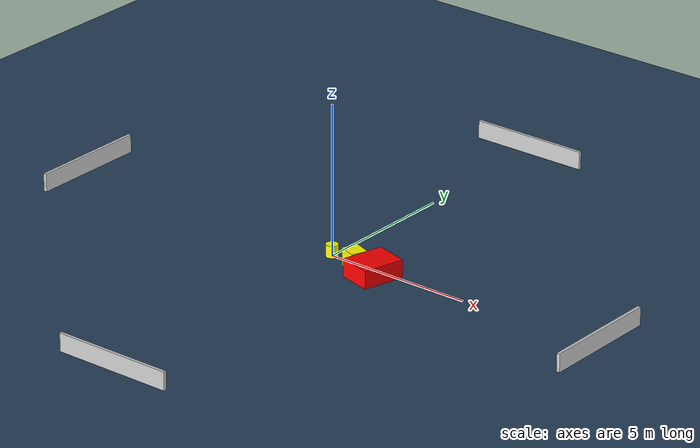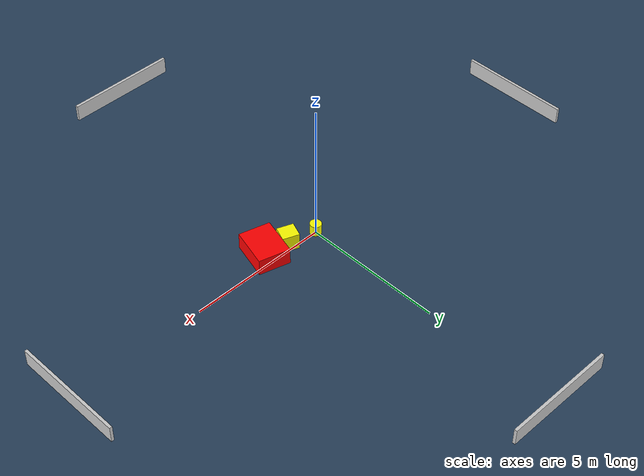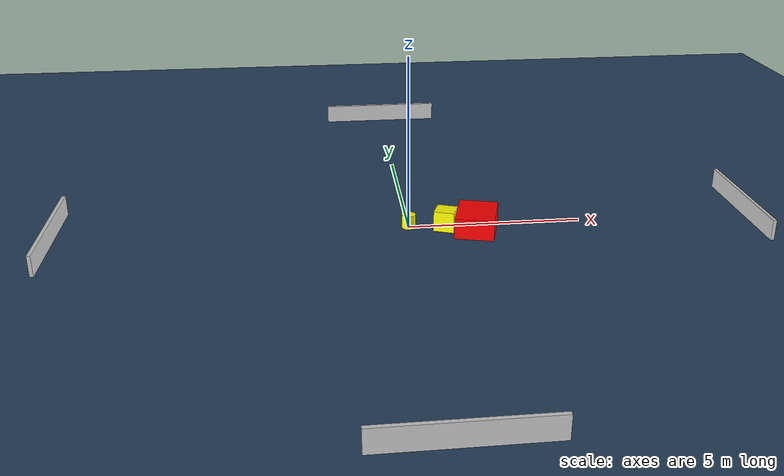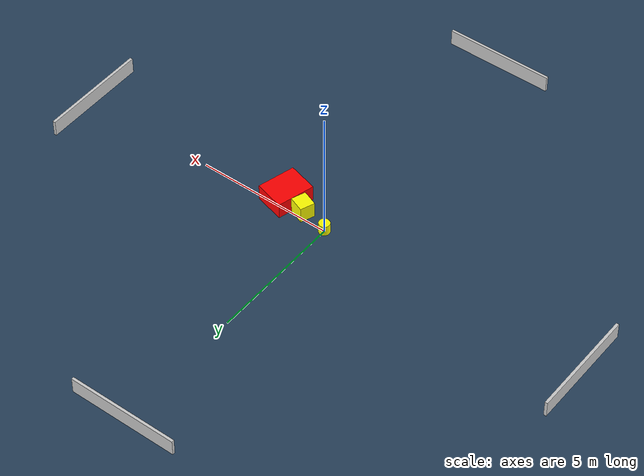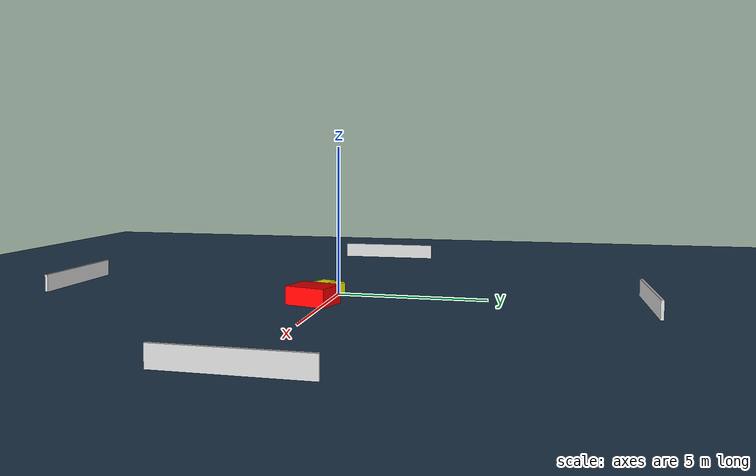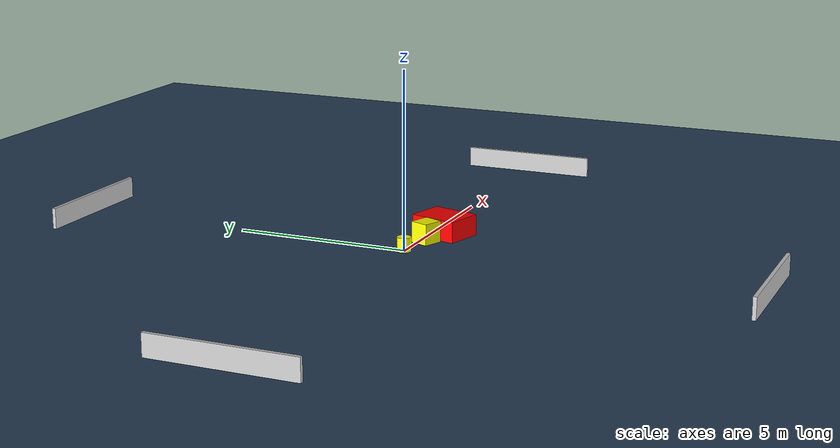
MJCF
<?xml version="1.0" ?>
<mujoco model="generated_environment">
  <option timestep="0.01" integrator="RK4" cone="elliptic"/>
  <default>
    <geom density="1"/>
  </default>
  <asset>
    <texture builtin="gradient" height="3072" name="skybox" rgb1="0.3 0.5 0.7" rgb2="0 0 0" type="skybox" width="512"/>
    <texture builtin="checker" height="300" name="groundplane" rgb1="0.2 0.3 0.4" rgb2="0.1 0.2 0.3" type="2d" width="300"/>
    <material name="groundplane" reflectance="0.2" texrepeat="5 5" texture="groundplane"/>
  </asset>
  <worldbody>
    <light dir="0 0 -1" directional="true" pos="0 0 1.5"/>
    <geom condim="3" friction="0.5 0.005 0.001" material="groundplane" name="floor" pos="0 0 0" size="0 0 0.05" type="plane"/>
    <body name="walls">
      <geom name="wall_1" condim="4" pos="-10.0 0.0 0.3" rgba="0.800000011920929 0.800000011920929 0.800000011920929 1.0" size="0.05 2.0 0.3" type="box"/>
      <geom name="wall_2" condim="4" pos="10.0 0.0 0.3" rgba="0.800000011920929 0.800000011920929 0.800000011920929 1.0" size="0.05 2.0 0.3" type="box"/>
      <geom name="wall_3" condim="4" pos="0.0 -10.0 0.3" rgba="0.800000011920929 0.800000011920929 0.800000011920929 1.0" size="2.0 0.05 0.3" type="box"/>
      <geom name="wall_4" condim="4" pos="0.0 10.0 0.3" rgba="0.800000011920929 0.800000011920929 0.800000011920929 1.0" size="2.0 0.05 0.3" type="box"/>
    </body>
    <body name="robot">
      <joint name="joint_x" type="slide" pos="0 0 0" axis="1 0 0"/>
      <joint name="joint_y" type="slide" pos="0 0 0" axis="0 1 0"/>
      <geom name="robot" type="cylinder" pos="0.0 0.0 0.2" size="0.2 0.2 0.0" mass="5.0" friction="1.0 0.005 0.0001" condim="4" rgba="1.0 1.0 0.0 1.0"/>
    </body>
    <body name="obstacle_1_movable">
      <geom name="obstacle_1_movable" condim="4" pos="1.0419022840286576 -0.2066019432903452 0.3" euler="0 0 338.90085586992427" friction="0.0 0.005 0.001" rgba="1.0 1.0 0.0 1.0" size="0.2942009395792492 0.27088176940555314 0.3" type="box" mass="0.1"/>
      <joint type="free"/>
    </body>
    <body name="obstacle_2_static">
      <geom name="obstacle_2_static" condim="4" pos="1.9007622135001958 -0.39712151085407993 0.3" euler="0 0 74.7839177051738" friction="0.0 0.005 0.001" rgba="1.0 0.0 0.0 1.0" size="0.7006451283404362 0.5562881635789991 0.3" type="box"/>
    </body>
  </worldbody>
  <actuator>
    <motor name="actuator_x" joint="joint_x" gear="1" ctrlrange="-1 1"/>
    <motor name="actuator_y" joint="joint_y" gear="1" ctrlrange="-1 1"/>
  </actuator>
</mujoco>
